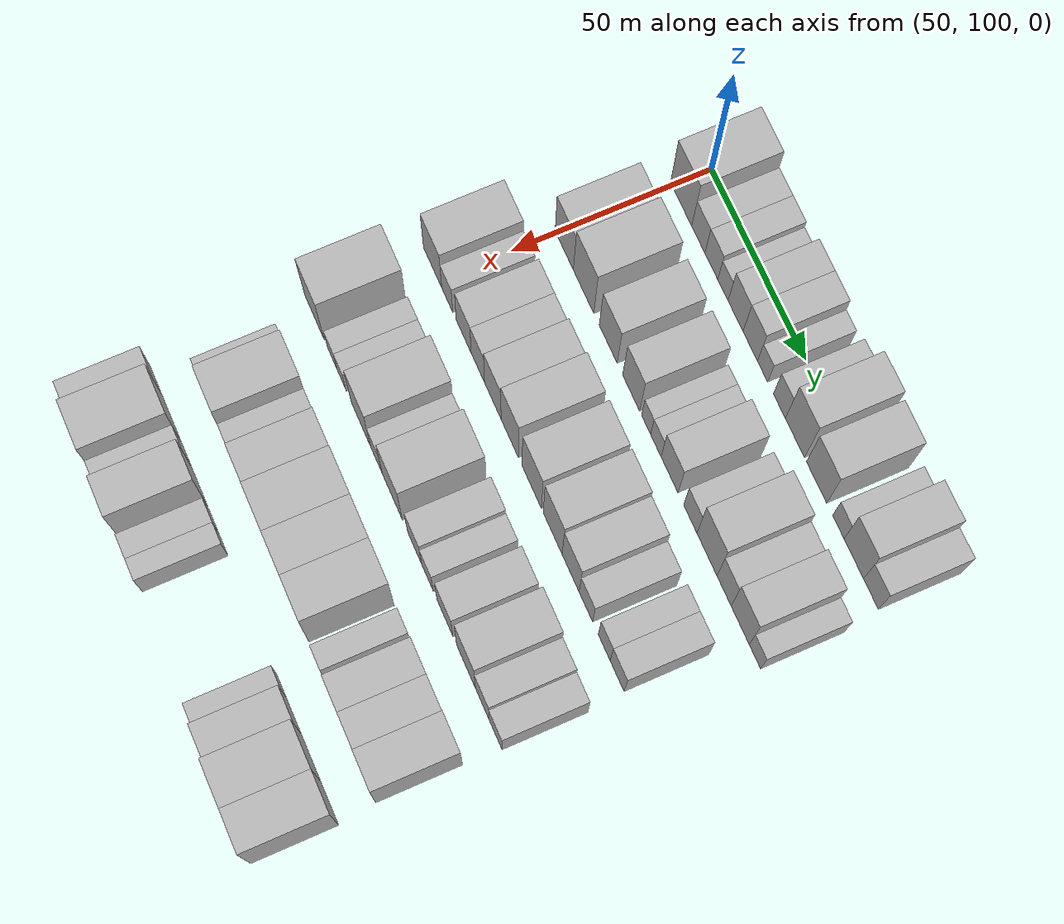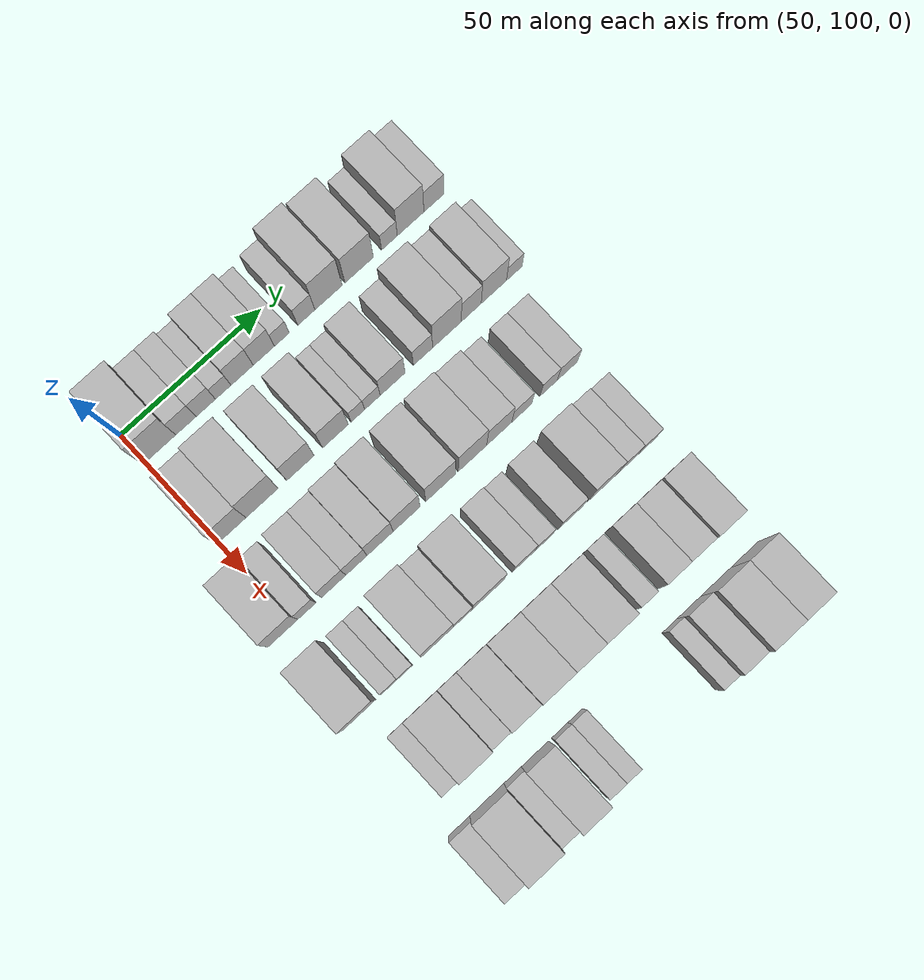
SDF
<sdf version="1.6">
 <world name="default">
  <model name="building_71">
   <static>1</static>
   <pose>50.0000 105.0422 0 0.000000 0.000000 0.000000</pose>
   <link name="link">
    <pose>0 0 12.00 0 0 0</pose>
    <collision name="collision"><geometry><box><size>20.0000 11.5213 24.0000</size></box></geometry></collision>
    <visual name="visual">
     <cast_shadows>0</cast_shadows>
     <geometry><box><size>20.0000 11.5213 24.0000</size></box></geometry>
     <material>
      <script>
       <uri>model://HANNAS_wall/materials/scripts</uri>
       <uri>model://HANNAS_wall/materials/textures</uri>
       <name>vrc/HANNAS_wall</name>
      </script>
     </material>
    </visual>
   </link>
  </model>
  <model name="building_72">
   <static>1</static>
   <pose>50.0000 114.3862 0 0.000000 0.000000 0.000000</pose>
   <link name="link">
    <pose>0 0 7.50 0 0 0</pose>
    <collision name="collision"><geometry><box><size>20.0000 7.1669 15.0000</size></box></geometry></collision>
    <visual name="visual">
     <cast_shadows>0</cast_shadows>
     <geometry><box><size>20.0000 7.1669 15.0000</size></box></geometry>
     <material>
      <script>
       <uri>model://HANNAS_wall/materials/scripts</uri>
       <uri>model://HANNAS_wall/materials/textures</uri>
       <name>vrc/HANNAS_wall</name>
      </script>
     </material>
    </visual>
   </link>
  </model>
  <model name="building_73">
   <static>1</static>
   <pose>50.0000 121.4127 0 0.000000 0.000000 0.000000</pose>
   <link name="link">
    <pose>0 0 7.50 0 0 0</pose>
    <collision name="collision"><geometry><box><size>20.0000 6.8861 15.0000</size></box></geometry></collision>
    <visual name="visual">
     <cast_shadows>0</cast_shadows>
     <geometry><box><size>20.0000 6.8861 15.0000</size></box></geometry>
     <material>
      <script>
       <uri>model://HANNAS_wall/materials/scripts</uri>
       <uri>model://HANNAS_wall/materials/textures</uri>
       <name>vrc/HANNAS_wall</name>
      </script>
     </material>
    </visual>
   </link>
  </model>
  <model name="building_74">
   <static>1</static>
   <pose>50.0000 127.6113 0 0.000000 0.000000 0.000000</pose>
   <link name="link">
    <pose>0 0 6.00 0 0 0</pose>
    <collision name="collision"><geometry><box><size>20.0000 5.5110 12.0000</size></box></geometry></collision>
    <visual name="visual">
     <cast_shadows>0</cast_shadows>
     <geometry><box><size>20.0000 5.5110 12.0000</size></box></geometry>
     <material>
      <script>
       <uri>model://HANNAS_wall/materials/scripts</uri>
       <uri>model://HANNAS_wall/materials/textures</uri>
       <name>vrc/HANNAS_wall</name>
      </script>
     </material>
    </visual>
   </link>
  </model>
  <model name="building_75">
   <static>1</static>
   <pose>50.0000 134.3503 0 0.000000 0.000000 0.000000</pose>
   <link name="link">
    <pose>0 0 9.00 0 0 0</pose>
    <collision name="collision"><geometry><box><size>20.0000 7.9670 18.0000</size></box></geometry></collision>
    <visual name="visual">
     <cast_shadows>0</cast_shadows>
     <geometry><box><size>20.0000 7.9670 18.0000</size></box></geometry>
     <material>
      <script>
       <uri>model://HANNAS_wall/materials/scripts</uri>
       <uri>model://HANNAS_wall/materials/textures</uri>
       <name>vrc/HANNAS_wall</name>
      </script>
     </material>
    </visual>
   </link>
  </model>
  <model name="building_76">
   <static>1</static>
   <pose>50.0000 142.1258 0 0.000000 0.000000 0.000000</pose>
   <link name="link">
    <pose>0 0 9.00 0 0 0</pose>
    <collision name="collision"><geometry><box><size>20.0000 7.5840 18.0000</size></box></geometry></collision>
    <visual name="visual">
     <cast_shadows>0</cast_shadows>
     <geometry><box><size>20.0000 7.5840 18.0000</size></box></geometry>
     <material>
      <script>
       <uri>model://HANNAS_wall/materials/scripts</uri>
       <uri>model://HANNAS_wall/materials/textures</uri>
       <name>vrc/HANNAS_wall</name>
      </script>
     </material>
    </visual>
   </link>
  </model>
  <model name="building_77">
   <static>1</static>
   <pose>50.0000 148.5942 0 0.000000 0.000000 0.000000</pose>
   <link name="link">
    <pose>0 0 6.00 0 0 0</pose>
    <collision name="collision"><geometry><box><size>20.0000 5.3529 12.0000</size></box></geometry></collision>
    <visual name="visual">
     <cast_shadows>0</cast_shadows>
     <geometry><box><size>20.0000 5.3529 12.0000</size></box></geometry>
     <material>
      <script>
       <uri>model://HANNAS_wall/materials/scripts</uri>
       <uri>model://HANNAS_wall/materials/textures</uri>
       <name>vrc/HANNAS_wall</name>
      </script>
     </material>
    </visual>
   </link>
  </model>
  <model name="building_78">
   <static>1</static>
   <pose>50.0000 157.3697 0 0.000000 0.000000 0.000000</pose>
   <link name="link">
    <pose>0 0 7.50 0 0 0</pose>
    <collision name="collision"><geometry><box><size>20.0000 6.1982 15.0000</size></box></geometry></collision>
    <visual name="visual">
     <cast_shadows>0</cast_shadows>
     <geometry><box><size>20.0000 6.1982 15.0000</size></box></geometry>
     <material>
      <script>
       <uri>model://HANNAS_wall/materials/scripts</uri>
       <uri>model://HANNAS_wall/materials/textures</uri>
       <name>vrc/HANNAS_wall</name>
      </script>
     </material>
    </visual>
   </link>
  </model>
  <model name="building_79">
   <static>1</static>
   <pose>50.0000 165.3997 0 0.000000 0.000000 0.000000</pose>
   <link name="link">
    <pose>0 0 12.00 0 0 0</pose>
    <collision name="collision"><geometry><box><size>20.0000 9.8618 24.0000</size></box></geometry></collision>
    <visual name="visual">
     <cast_shadows>0</cast_shadows>
     <geometry><box><size>20.0000 9.8618 24.0000</size></box></geometry>
     <material>
      <script>
       <uri>model://HANNAS_wall/materials/scripts</uri>
       <uri>model://HANNAS_wall/materials/textures</uri>
       <name>vrc/HANNAS_wall</name>
      </script>
     </material>
    </visual>
   </link>
  </model>
  <model name="building_80">
   <static>1</static>
   <pose>50.0000 176.4827 0 0.000000 0.000000 0.000000</pose>
   <link name="link">
    <pose>0 0 10.50 0 0 0</pose>
    <collision name="collision"><geometry><box><size>20.0000 10.3041 21.0000</size></box></geometry></collision>
    <visual name="visual">
     <cast_shadows>0</cast_shadows>
     <geometry><box><size>20.0000 10.3041 21.0000</size></box></geometry>
     <material>
      <script>
       <uri>model://HANNAS_wall/materials/scripts</uri>
       <uri>model://HANNAS_wall/materials/textures</uri>
       <name>vrc/HANNAS_wall</name>
      </script>
     </material>
    </visual>
   </link>
  </model>
  <model name="building_81">
   <static>1</static>
   <pose>50.0000 187.5096 0 0.000000 0.000000 0.000000</pose>
   <link name="link">
    <pose>0 0 6.00 0 0 0</pose>
    <collision name="collision"><geometry><box><size>20.0000 5.7497 12.0000</size></box></geometry></collision>
    <visual name="visual">
     <cast_shadows>0</cast_shadows>
     <geometry><box><size>20.0000 5.7497 12.0000</size></box></geometry>
     <material>
      <script>
       <uri>model://HANNAS_wall/materials/scripts</uri>
       <uri>model://HANNAS_wall/materials/textures</uri>
       <name>vrc/HANNAS_wall</name>
      </script>
     </material>
    </visual>
   </link>
  </model>
  <model name="building_82">
   <static>1</static>
   <pose>50.0000 195.2482 0 0.000000 0.000000 0.000000</pose>
   <link name="link">
    <pose>0 0 10.50 0 0 0</pose>
    <collision name="collision"><geometry><box><size>20.0000 9.7275 21.0000</size></box></geometry></collision>
    <visual name="visual">
     <cast_shadows>0</cast_shadows>
     <geometry><box><size>20.0000 9.7275 21.0000</size></box></geometry>
     <material>
      <script>
       <uri>model://HANNAS_wall/materials/scripts</uri>
       <uri>model://HANNAS_wall/materials/textures</uri>
       <name>vrc/HANNAS_wall</name>
      </script>
     </material>
    </visual>
   </link>
  </model>
  <model name="building_83">
   <static>1</static>
   <pose>50.0000 203.8060 0 0.000000 0.000000 0.000000</pose>
   <link name="link">
    <pose>0 0 7.50 0 0 0</pose>
    <collision name="collision"><geometry><box><size>20.0000 7.3881 15.0000</size></box></geometry></collision>
    <visual name="visual">
     <cast_shadows>0</cast_shadows>
     <geometry><box><size>20.0000 7.3881 15.0000</size></box></geometry>
     <material>
      <script>
       <uri>model://HANNAS_wall/materials/scripts</uri>
       <uri>model://HANNAS_wall/materials/textures</uri>
       <name>vrc/HANNAS_wall</name>
      </script>
     </material>
    </visual>
   </link>
  </model>
  <model name="building_189">
   <static>1</static>
   <pose>79.0000 104.6374 0 0.000000 0.000000 0.000000</pose>
   <link name="link">
    <pose>0 0 10.50 0 0 0</pose>
    <collision name="collision"><geometry><box><size>20.0000 10.1676 21.0000</size></box></geometry></collision>
    <visual name="visual">
     <cast_shadows>0</cast_shadows>
     <geometry><box><size>20.0000 10.1676 21.0000</size></box></geometry>
     <material>
      <script>
       <uri>model://HANNAS_wall/materials/scripts</uri>
       <uri>model://HANNAS_wall/materials/textures</uri>
       <name>vrc/HANNAS_wall</name>
      </script>
     </material>
    </visual>
   </link>
  </model>
  <model name="building_190">
   <static>1</static>
   <pose>79.0000 115.3976 0 0.000000 0.000000 0.000000</pose>
   <link name="link">
    <pose>0 0 12.00 0 0 0</pose>
    <collision name="collision"><geometry><box><size>20.0000 11.3528 24.0000</size></box></geometry></collision>
    <visual name="visual">
     <cast_shadows>0</cast_shadows>
     <geometry><box><size>20.0000 11.3528 24.0000</size></box></geometry>
     <material>
      <script>
       <uri>model://HANNAS_wall/materials/scripts</uri>
       <uri>model://HANNAS_wall/materials/textures</uri>
       <name>vrc/HANNAS_wall</name>
      </script>
     </material>
    </visual>
   </link>
  </model>
  <model name="building_191">
   <static>1</static>
   <pose>79.0000 128.9680 0 0.000000 0.000000 0.000000</pose>
   <link name="link">
    <pose>0 0 10.50 0 0 0</pose>
    <collision name="collision"><geometry><box><size>20.0000 9.7881 21.0000</size></box></geometry></collision>
    <visual name="visual">
     <cast_shadows>0</cast_shadows>
     <geometry><box><size>20.0000 9.7881 21.0000</size></box></geometry>
     <material>
      <script>
       <uri>model://HANNAS_wall/materials/scripts</uri>
       <uri>model://HANNAS_wall/materials/textures</uri>
       <name>vrc/HANNAS_wall</name>
      </script>
     </material>
    </visual>
   </link>
  </model>
  <model name="building_192">
   <static>1</static>
   <pose>79.0000 141.4562 0 0.000000 0.000000 0.000000</pose>
   <link name="link">
    <pose>0 0 10.50 0 0 0</pose>
    <collision name="collision"><geometry><box><size>20.0000 9.1883 21.0000</size></box></geometry></collision>
    <visual name="visual">
     <cast_shadows>0</cast_shadows>
     <geometry><box><size>20.0000 9.1883 21.0000</size></box></geometry>
     <material>
      <script>
       <uri>model://HANNAS_wall/materials/scripts</uri>
       <uri>model://HANNAS_wall/materials/textures</uri>
       <name>vrc/HANNAS_wall</name>
      </script>
     </material>
    </visual>
   </link>
  </model>
  <model name="building_193">
   <static>1</static>
   <pose>79.0000 149.4692 0 0.000000 0.000000 0.000000</pose>
   <link name="link">
    <pose>0 0 6.00 0 0 0</pose>
    <collision name="collision"><geometry><box><size>20.0000 4.8378 12.0000</size></box></geometry></collision>
    <visual name="visual">
     <cast_shadows>0</cast_shadows>
     <geometry><box><size>20.0000 4.8378 12.0000</size></box></geometry>
     <material>
      <script>
       <uri>model://HANNAS_wall/materials/scripts</uri>
       <uri>model://HANNAS_wall/materials/textures</uri>
       <name>vrc/HANNAS_wall</name>
      </script>
     </material>
    </visual>
   </link>
  </model>
  <model name="building_194">
   <static>1</static>
   <pose>79.0000 154.6959 0 0.000000 0.000000 0.000000</pose>
   <link name="link">
    <pose>0 0 6.00 0 0 0</pose>
    <collision name="collision"><geometry><box><size>20.0000 5.6156 12.0000</size></box></geometry></collision>
    <visual name="visual">
     <cast_shadows>0</cast_shadows>
     <geometry><box><size>20.0000 5.6156 12.0000</size></box></geometry>
     <material>
      <script>
       <uri>model://HANNAS_wall/materials/scripts</uri>
       <uri>model://HANNAS_wall/materials/textures</uri>
       <name>vrc/HANNAS_wall</name>
      </script>
     </material>
    </visual>
   </link>
  </model>
  <model name="building_195">
   <static>1</static>
   <pose>79.0000 161.9669 0 0.000000 0.000000 0.000000</pose>
   <link name="link">
    <pose>0 0 9.00 0 0 0</pose>
    <collision name="collision"><geometry><box><size>20.0000 8.9262 18.0000</size></box></geometry></collision>
    <visual name="visual">
     <cast_shadows>0</cast_shadows>
     <geometry><box><size>20.0000 8.9262 18.0000</size></box></geometry>
     <material>
      <script>
       <uri>model://HANNAS_wall/materials/scripts</uri>
       <uri>model://HANNAS_wall/materials/textures</uri>
       <name>vrc/HANNAS_wall</name>
      </script>
     </material>
    </visual>
   </link>
  </model>
  <model name="building_196">
   <static>1</static>
   <pose>79.0000 172.9092 0 0.000000 0.000000 0.000000</pose>
   <link name="link">
    <pose>0 0 7.50 0 0 0</pose>
    <collision name="collision"><geometry><box><size>20.0000 6.9585 15.0000</size></box></geometry></collision>
    <visual name="visual">
     <cast_shadows>0</cast_shadows>
     <geometry><box><size>20.0000 6.9585 15.0000</size></box></geometry>
     <material>
      <script>
       <uri>model://HANNAS_wall/materials/scripts</uri>
       <uri>model://HANNAS_wall/materials/textures</uri>
       <name>vrc/HANNAS_wall</name>
      </script>
     </material>
    </visual>
   </link>
  </model>
  <model name="building_197">
   <static>1</static>
   <pose>79.0000 181.5990 0 0.000000 0.000000 0.000000</pose>
   <link name="link">
    <pose>0 0 12.00 0 0 0</pose>
    <collision name="collision"><geometry><box><size>20.0000 10.4212 24.0000</size></box></geometry></collision>
    <visual name="visual">
     <cast_shadows>0</cast_shadows>
     <geometry><box><size>20.0000 10.4212 24.0000</size></box></geometry>
     <material>
      <script>
       <uri>model://HANNAS_wall/materials/scripts</uri>
       <uri>model://HANNAS_wall/materials/textures</uri>
       <name>vrc/HANNAS_wall</name>
      </script>
     </material>
    </visual>
   </link>
  </model>
  <model name="building_198">
   <static>1</static>
   <pose>79.0000 190.4482 0 0.000000 0.000000 0.000000</pose>
   <link name="link">
    <pose>0 0 9.00 0 0 0</pose>
    <collision name="collision"><geometry><box><size>20.0000 7.2770 18.0000</size></box></geometry></collision>
    <visual name="visual">
     <cast_shadows>0</cast_shadows>
     <geometry><box><size>20.0000 7.2770 18.0000</size></box></geometry>
     <material>
      <script>
       <uri>model://HANNAS_wall/materials/scripts</uri>
       <uri>model://HANNAS_wall/materials/textures</uri>
       <name>vrc/HANNAS_wall</name>
      </script>
     </material>
    </visual>
   </link>
  </model>
  <model name="building_199">
   <static>1</static>
   <pose>79.0000 198.7038 0 0.000000 0.000000 0.000000</pose>
   <link name="link">
    <pose>0 0 10.50 0 0 0</pose>
    <collision name="collision"><geometry><box><size>20.0000 9.2343 21.0000</size></box></geometry></collision>
    <visual name="visual">
     <cast_shadows>0</cast_shadows>
     <geometry><box><size>20.0000 9.2343 21.0000</size></box></geometry>
     <material>
      <script>
       <uri>model://HANNAS_wall/materials/scripts</uri>
       <uri>model://HANNAS_wall/materials/textures</uri>
       <name>vrc/HANNAS_wall</name>
      </script>
     </material>
    </visual>
   </link>
  </model>
  <model name="building_200">
   <static>1</static>
   <pose>79.0000 206.2001 0 0.000000 0.000000 0.000000</pose>
   <link name="link">
    <pose>0 0 6.00 0 0 0</pose>
    <collision name="collision"><geometry><box><size>20.0000 5.7583 12.0000</size></box></geometry></collision>
    <visual name="visual">
     <cast_shadows>0</cast_shadows>
     <geometry><box><size>20.0000 5.7583 12.0000</size></box></geometry>
     <material>
      <script>
       <uri>model://HANNAS_wall/materials/scripts</uri>
       <uri>model://HANNAS_wall/materials/textures</uri>
       <name>vrc/HANNAS_wall</name>
      </script>
     </material>
    </visual>
   </link>
  </model>
  <model name="building_304">
   <static>1</static>
   <pose>108.0000 96.5992 0 0.000000 0.000000 0.000000</pose>
   <link name="link">
    <pose>0 0 10.50 0 0 0</pose>
    <collision name="collision"><geometry><box><size>20.0000 10.4865 21.0000</size></box></geometry></collision>
    <visual name="visual">
     <cast_shadows>0</cast_shadows>
     <geometry><box><size>20.0000 10.4865 21.0000</size></box></geometry>
     <material>
      <script>
       <uri>model://HANNAS_wall/materials/scripts</uri>
       <uri>model://HANNAS_wall/materials/textures</uri>
       <name>vrc/HANNAS_wall</name>
      </script>
     </material>
    </visual>
   </link>
  </model>
  <model name="building_305">
   <static>1</static>
   <pose>108.0000 105.0092 0 0.000000 0.000000 0.000000</pose>
   <link name="link">
    <pose>0 0 7.50 0 0 0</pose>
    <collision name="collision"><geometry><box><size>20.0000 6.3336 15.0000</size></box></geometry></collision>
    <visual name="visual">
     <cast_shadows>0</cast_shadows>
     <geometry><box><size>20.0000 6.3336 15.0000</size></box></geometry>
     <material>
      <script>
       <uri>model://HANNAS_wall/materials/scripts</uri>
       <uri>model://HANNAS_wall/materials/textures</uri>
       <name>vrc/HANNAS_wall</name>
      </script>
     </material>
    </visual>
   </link>
  </model>
  <model name="building_306">
   <static>1</static>
   <pose>108.0000 114.4314 0 0.000000 0.000000 0.000000</pose>
   <link name="link">
    <pose>0 0 9.00 0 0 0</pose>
    <collision name="collision"><geometry><box><size>20.0000 8.5107 18.0000</size></box></geometry></collision>
    <visual name="visual">
     <cast_shadows>0</cast_shadows>
     <geometry><box><size>20.0000 8.5107 18.0000</size></box></geometry>
     <material>
      <script>
       <uri>model://HANNAS_wall/materials/scripts</uri>
       <uri>model://HANNAS_wall/materials/textures</uri>
       <name>vrc/HANNAS_wall</name>
      </script>
     </material>
    </visual>
   </link>
  </model>
  <model name="building_307">
   <static>1</static>
   <pose>108.0000 122.4295 0 0.000000 0.000000 0.000000</pose>
   <link name="link">
    <pose>0 0 9.00 0 0 0</pose>
    <collision name="collision"><geometry><box><size>20.0000 7.4855 18.0000</size></box></geometry></collision>
    <visual name="visual">
     <cast_shadows>0</cast_shadows>
     <geometry><box><size>20.0000 7.4855 18.0000</size></box></geometry>
     <material>
      <script>
       <uri>model://HANNAS_wall/materials/scripts</uri>
       <uri>model://HANNAS_wall/materials/textures</uri>
       <name>vrc/HANNAS_wall</name>
      </script>
     </material>
    </visual>
   </link>
  </model>
  <model name="building_308">
   <static>1</static>
   <pose>108.0000 130.8120 0 0.000000 0.000000 0.000000</pose>
   <link name="link">
    <pose>0 0 10.50 0 0 0</pose>
    <collision name="collision"><geometry><box><size>20.0000 9.2796 21.0000</size></box></geometry></collision>
    <visual name="visual">
     <cast_shadows>0</cast_shadows>
     <geometry><box><size>20.0000 9.2796 21.0000</size></box></geometry>
     <material>
      <script>
       <uri>model://HANNAS_wall/materials/scripts</uri>
       <uri>model://HANNAS_wall/materials/textures</uri>
       <name>vrc/HANNAS_wall</name>
      </script>
     </material>
    </visual>
   </link>
  </model>
  <model name="building_309">
   <static>1</static>
   <pose>108.0000 140.2572 0 0.000000 0.000000 0.000000</pose>
   <link name="link">
    <pose>0 0 12.00 0 0 0</pose>
    <collision name="collision"><geometry><box><size>20.0000 9.6108 24.0000</size></box></geometry></collision>
    <visual name="visual">
     <cast_shadows>0</cast_shadows>
     <geometry><box><size>20.0000 9.6108 24.0000</size></box></geometry>
     <material>
      <script>
       <uri>model://HANNAS_wall/materials/scripts</uri>
       <uri>model://HANNAS_wall/materials/textures</uri>
       <name>vrc/HANNAS_wall</name>
      </script>
     </material>
    </visual>
   </link>
  </model>
  <model name="building_310">
   <static>1</static>
   <pose>108.0000 152.3832 0 0.000000 0.000000 0.000000</pose>
   <link name="link">
    <pose>0 0 12.00 0 0 0</pose>
    <collision name="collision"><geometry><box><size>20.0000 10.6410 24.0000</size></box></geometry></collision>
    <visual name="visual">
     <cast_shadows>0</cast_shadows>
     <geometry><box><size>20.0000 10.6410 24.0000</size></box></geometry>
     <material>
      <script>
       <uri>model://HANNAS_wall/materials/scripts</uri>
       <uri>model://HANNAS_wall/materials/textures</uri>
       <name>vrc/HANNAS_wall</name>
      </script>
     </material>
    </visual>
   </link>
  </model>
  <model name="building_311">
   <static>1</static>
   <pose>108.0000 163.8141 0 0.000000 0.000000 0.000000</pose>
   <link name="link">
    <pose>0 0 12.00 0 0 0</pose>
    <collision name="collision"><geometry><box><size>20.0000 10.2208 24.0000</size></box></geometry></collision>
    <visual name="visual">
     <cast_shadows>0</cast_shadows>
     <geometry><box><size>20.0000 10.2208 24.0000</size></box></geometry>
     <material>
      <script>
       <uri>model://HANNAS_wall/materials/scripts</uri>
       <uri>model://HANNAS_wall/materials/textures</uri>
       <name>vrc/HANNAS_wall</name>
      </script>
     </material>
    </visual>
   </link>
  </model>
  <model name="building_312">
   <static>1</static>
   <pose>108.0000 173.4980 0 0.000000 0.000000 0.000000</pose>
   <link name="link">
    <pose>0 0 10.50 0 0 0</pose>
    <collision name="collision"><geometry><box><size>20.0000 9.1470 21.0000</size></box></geometry></collision>
    <visual name="visual">
     <cast_shadows>0</cast_shadows>
     <geometry><box><size>20.0000 9.1470 21.0000</size></box></geometry>
     <material>
      <script>
       <uri>model://HANNAS_wall/materials/scripts</uri>
       <uri>model://HANNAS_wall/materials/textures</uri>
       <name>vrc/HANNAS_wall</name>
      </script>
     </material>
    </visual>
   </link>
  </model>
  <model name="building_313">
   <static>1</static>
   <pose>108.0000 181.6692 0 0.000000 0.000000 0.000000</pose>
   <link name="link">
    <pose>0 0 7.50 0 0 0</pose>
    <collision name="collision"><geometry><box><size>20.0000 7.1953 15.0000</size></box></geometry></collision>
    <visual name="visual">
     <cast_shadows>0</cast_shadows>
     <geometry><box><size>20.0000 7.1953 15.0000</size></box></geometry>
     <material>
      <script>
       <uri>model://HANNAS_wall/materials/scripts</uri>
       <uri>model://HANNAS_wall/materials/textures</uri>
       <name>vrc/HANNAS_wall</name>
      </script>
     </material>
    </visual>
   </link>
  </model>
  <model name="building_314">
   <static>1</static>
   <pose>108.0000 191.3875 0 0.000000 0.000000 0.000000</pose>
   <link name="link">
    <pose>0 0 7.50 0 0 0</pose>
    <collision name="collision"><geometry><box><size>20.0000 6.2413 15.0000</size></box></geometry></collision>
    <visual name="visual">
     <cast_shadows>0</cast_shadows>
     <geometry><box><size>20.0000 6.2413 15.0000</size></box></geometry>
     <material>
      <script>
       <uri>model://HANNAS_wall/materials/scripts</uri>
       <uri>model://HANNAS_wall/materials/textures</uri>
       <name>vrc/HANNAS_wall</name>
      </script>
     </material>
    </visual>
   </link>
  </model>
  <model name="building_315">
   <static>1</static>
   <pose>108.0000 198.1642 0 0.000000 0.000000 0.000000</pose>
   <link name="link">
    <pose>0 0 7.50 0 0 0</pose>
    <collision name="collision"><geometry><box><size>20.0000 7.3122 15.0000</size></box></geometry></collision>
    <visual name="visual">
     <cast_shadows>0</cast_shadows>
     <geometry><box><size>20.0000 7.3122 15.0000</size></box></geometry>
     <material>
      <script>
       <uri>model://HANNAS_wall/materials/scripts</uri>
       <uri>model://HANNAS_wall/materials/textures</uri>
       <name>vrc/HANNAS_wall</name>
      </script>
     </material>
    </visual>
   </link>
  </model>
  <model name="building_420">
   <static>1</static>
   <pose>137.0000 96.9860 0 0.000000 0.000000 0.000000</pose>
   <link name="link">
    <pose>0 0 12.00 0 0 0</pose>
    <collision name="collision"><geometry><box><size>20.0000 11.4616 24.0000</size></box></geometry></collision>
    <visual name="visual">
     <cast_shadows>0</cast_shadows>
     <geometry><box><size>20.0000 11.4616 24.0000</size></box></geometry>
     <material>
      <script>
       <uri>model://HANNAS_wall/materials/scripts</uri>
       <uri>model://HANNAS_wall/materials/textures</uri>
       <name>vrc/HANNAS_wall</name>
      </script>
     </material>
    </visual>
   </link>
  </model>
  <model name="building_421">
   <static>1</static>
   <pose>137.0000 107.5729 0 0.000000 0.000000 0.000000</pose>
   <link name="link">
    <pose>0 0 6.00 0 0 0</pose>
    <collision name="collision"><geometry><box><size>20.0000 5.7123 12.0000</size></box></geometry></collision>
    <visual name="visual">
     <cast_shadows>0</cast_shadows>
     <geometry><box><size>20.0000 5.7123 12.0000</size></box></geometry>
     <material>
      <script>
       <uri>model://HANNAS_wall/materials/scripts</uri>
       <uri>model://HANNAS_wall/materials/textures</uri>
       <name>vrc/HANNAS_wall</name>
      </script>
     </material>
    </visual>
   </link>
  </model>
  <model name="building_422">
   <static>1</static>
   <pose>137.0000 113.0613 0 0.000000 0.000000 0.000000</pose>
   <link name="link">
    <pose>0 0 6.00 0 0 0</pose>
    <collision name="collision"><geometry><box><size>20.0000 5.2644 12.0000</size></box></geometry></collision>
    <visual name="visual">
     <cast_shadows>0</cast_shadows>
     <geometry><box><size>20.0000 5.2644 12.0000</size></box></geometry>
     <material>
      <script>
       <uri>model://HANNAS_wall/materials/scripts</uri>
       <uri>model://HANNAS_wall/materials/textures</uri>
       <name>vrc/HANNAS_wall</name>
      </script>
     </material>
    </visual>
   </link>
  </model>
  <model name="building_423">
   <static>1</static>
   <pose>137.0000 124.2670 0 0.000000 0.000000 0.000000</pose>
   <link name="link">
    <pose>0 0 12.00 0 0 0</pose>
    <collision name="collision"><geometry><box><size>20.0000 11.1469 24.0000</size></box></geometry></collision>
    <visual name="visual">
     <cast_shadows>0</cast_shadows>
     <geometry><box><size>20.0000 11.1469 24.0000</size></box></geometry>
     <material>
      <script>
       <uri>model://HANNAS_wall/materials/scripts</uri>
       <uri>model://HANNAS_wall/materials/textures</uri>
       <name>vrc/HANNAS_wall</name>
      </script>
     </material>
    </visual>
   </link>
  </model>
  <model name="building_424">
   <static>1</static>
   <pose>137.0000 133.1714 0 0.000000 0.000000 0.000000</pose>
   <link name="link">
    <pose>0 0 7.50 0 0 0</pose>
    <collision name="collision"><geometry><box><size>20.0000 6.6620 15.0000</size></box></geometry></collision>
    <visual name="visual">
     <cast_shadows>0</cast_shadows>
     <geometry><box><size>20.0000 6.6620 15.0000</size></box></geometry>
     <material>
      <script>
       <uri>model://HANNAS_wall/materials/scripts</uri>
       <uri>model://HANNAS_wall/materials/textures</uri>
       <name>vrc/HANNAS_wall</name>
      </script>
     </material>
    </visual>
   </link>
  </model>
  <model name="building_425">
   <static>1</static>
   <pose>137.0000 142.2371 0 0.000000 0.000000 0.000000</pose>
   <link name="link">
    <pose>0 0 12.00 0 0 0</pose>
    <collision name="collision"><geometry><box><size>20.0000 11.4694 24.0000</size></box></geometry></collision>
    <visual name="visual">
     <cast_shadows>0</cast_shadows>
     <geometry><box><size>20.0000 11.4694 24.0000</size></box></geometry>
     <material>
      <script>
       <uri>model://HANNAS_wall/materials/scripts</uri>
       <uri>model://HANNAS_wall/materials/textures</uri>
       <name>vrc/HANNAS_wall</name>
      </script>
     </material>
    </visual>
   </link>
  </model>
  <model name="building_426">
   <static>1</static>
   <pose>137.0000 154.9363 0 0.000000 0.000000 0.000000</pose>
   <link name="link">
    <pose>0 0 9.00 0 0 0</pose>
    <collision name="collision"><geometry><box><size>20.0000 7.9289 18.0000</size></box></geometry></collision>
    <visual name="visual">
     <cast_shadows>0</cast_shadows>
     <geometry><box><size>20.0000 7.9289 18.0000</size></box></geometry>
     <material>
      <script>
       <uri>model://HANNAS_wall/materials/scripts</uri>
       <uri>model://HANNAS_wall/materials/textures</uri>
       <name>vrc/HANNAS_wall</name>
      </script>
     </material>
    </visual>
   </link>
  </model>
  <model name="building_427">
   <static>1</static>
   <pose>137.0000 162.1139 0 0.000000 0.000000 0.000000</pose>
   <link name="link">
    <pose>0 0 7.50 0 0 0</pose>
    <collision name="collision"><geometry><box><size>20.0000 6.4263 15.0000</size></box></geometry></collision>
    <visual name="visual">
     <cast_shadows>0</cast_shadows>
     <geometry><box><size>20.0000 6.4263 15.0000</size></box></geometry>
     <material>
      <script>
       <uri>model://HANNAS_wall/materials/scripts</uri>
       <uri>model://HANNAS_wall/materials/textures</uri>
       <name>vrc/HANNAS_wall</name>
      </script>
     </material>
    </visual>
   </link>
  </model>
  <model name="building_428">
   <static>1</static>
   <pose>137.0000 171.7398 0 0.000000 0.000000 0.000000</pose>
   <link name="link">
    <pose>0 0 9.00 0 0 0</pose>
    <collision name="collision"><geometry><box><size>20.0000 8.8256 18.0000</size></box></geometry></collision>
    <visual name="visual">
     <cast_shadows>0</cast_shadows>
     <geometry><box><size>20.0000 8.8256 18.0000</size></box></geometry>
     <material>
      <script>
       <uri>model://HANNAS_wall/materials/scripts</uri>
       <uri>model://HANNAS_wall/materials/textures</uri>
       <name>vrc/HANNAS_wall</name>
      </script>
     </material>
    </visual>
   </link>
  </model>
  <model name="building_429">
   <static>1</static>
   <pose>137.0000 183.3273 0 0.000000 0.000000 0.000000</pose>
   <link name="link">
    <pose>0 0 12.00 0 0 0</pose>
    <collision name="collision"><geometry><box><size>20.0000 10.3495 24.0000</size></box></geometry></collision>
    <visual name="visual">
     <cast_shadows>0</cast_shadows>
     <geometry><box><size>20.0000 10.3495 24.0000</size></box></geometry>
     <material>
      <script>
       <uri>model://HANNAS_wall/materials/scripts</uri>
       <uri>model://HANNAS_wall/materials/textures</uri>
       <name>vrc/HANNAS_wall</name>
      </script>
     </material>
    </visual>
   </link>
  </model>
  <model name="building_430">
   <static>1</static>
   <pose>137.0000 192.2077 0 0.000000 0.000000 0.000000</pose>
   <link name="link">
    <pose>0 0 9.00 0 0 0</pose>
    <collision name="collision"><geometry><box><size>20.0000 7.4113 18.0000</size></box></geometry></collision>
    <visual name="visual">
     <cast_shadows>0</cast_shadows>
     <geometry><box><size>20.0000 7.4113 18.0000</size></box></geometry>
     <material>
      <script>
       <uri>model://HANNAS_wall/materials/scripts</uri>
       <uri>model://HANNAS_wall/materials/textures</uri>
       <name>vrc/HANNAS_wall</name>
      </script>
     </material>
    </visual>
   </link>
  </model>
  <model name="building_431">
   <static>1</static>
   <pose>137.0000 199.3708 0 0.000000 0.000000 0.000000</pose>
   <link name="link">
    <pose>0 0 7.50 0 0 0</pose>
    <collision name="collision"><geometry><box><size>20.0000 6.9150 15.0000</size></box></geometry></collision>
    <visual name="visual">
     <cast_shadows>0</cast_shadows>
     <geometry><box><size>20.0000 6.9150 15.0000</size></box></geometry>
     <material>
      <script>
       <uri>model://HANNAS_wall/materials/scripts</uri>
       <uri>model://HANNAS_wall/materials/textures</uri>
       <name>vrc/HANNAS_wall</name>
      </script>
     </material>
    </visual>
   </link>
  </model>
  <model name="building_531">
   <static>1</static>
   <pose>166.0000 101.8438 0 0.000000 0.000000 0.000000</pose>
   <link name="link">
    <pose>0 0 6.00 0 0 0</pose>
    <collision name="collision"><geometry><box><size>20.0000 5.8209 12.0000</size></box></geometry></collision>
    <visual name="visual">
     <cast_shadows>0</cast_shadows>
     <geometry><box><size>20.0000 5.8209 12.0000</size></box></geometry>
     <material>
      <script>
       <uri>model://HANNAS_wall/materials/scripts</uri>
       <uri>model://HANNAS_wall/materials/textures</uri>
       <name>vrc/HANNAS_wall</name>
      </script>
     </material>
    </visual>
   </link>
  </model>
  <model name="building_532">
   <static>1</static>
   <pose>166.0000 110.3839 0 0.000000 0.000000 0.000000</pose>
   <link name="link">
    <pose>0 0 12.00 0 0 0</pose>
    <collision name="collision"><geometry><box><size>20.0000 11.2594 24.0000</size></box></geometry></collision>
    <visual name="visual">
     <cast_shadows>0</cast_shadows>
     <geometry><box><size>20.0000 11.2594 24.0000</size></box></geometry>
     <material>
      <script>
       <uri>model://HANNAS_wall/materials/scripts</uri>
       <uri>model://HANNAS_wall/materials/textures</uri>
       <name>vrc/HANNAS_wall</name>
      </script>
     </material>
    </visual>
   </link>
  </model>
  <model name="building_533">
   <static>1</static>
   <pose>166.0000 119.2672 0 0.000000 0.000000 0.000000</pose>
   <link name="link">
    <pose>0 0 7.50 0 0 0</pose>
    <collision name="collision"><geometry><box><size>20.0000 6.5071 15.0000</size></box></geometry></collision>
    <visual name="visual">
     <cast_shadows>0</cast_shadows>
     <geometry><box><size>20.0000 6.5071 15.0000</size></box></geometry>
     <material>
      <script>
       <uri>model://HANNAS_wall/materials/scripts</uri>
       <uri>model://HANNAS_wall/materials/textures</uri>
       <name>vrc/HANNAS_wall</name>
      </script>
     </material>
    </visual>
   </link>
  </model>
  <model name="building_534">
   <static>1</static>
   <pose>166.0000 127.5234 0 0.000000 0.000000 0.000000</pose>
   <link name="link">
    <pose>0 0 10.50 0 0 0</pose>
    <collision name="collision"><geometry><box><size>20.0000 10.0052 21.0000</size></box></geometry></collision>
    <visual name="visual">
     <cast_shadows>0</cast_shadows>
     <geometry><box><size>20.0000 10.0052 21.0000</size></box></geometry>
     <material>
      <script>
       <uri>model://HANNAS_wall/materials/scripts</uri>
       <uri>model://HANNAS_wall/materials/textures</uri>
       <name>vrc/HANNAS_wall</name>
      </script>
     </material>
    </visual>
   </link>
  </model>
  <model name="building_535">
   <static>1</static>
   <pose>166.0000 138.2394 0 0.000000 0.000000 0.000000</pose>
   <link name="link">
    <pose>0 0 12.00 0 0 0</pose>
    <collision name="collision"><geometry><box><size>20.0000 11.4267 24.0000</size></box></geometry></collision>
    <visual name="visual">
     <cast_shadows>0</cast_shadows>
     <geometry><box><size>20.0000 11.4267 24.0000</size></box></geometry>
     <material>
      <script>
       <uri>model://HANNAS_wall/materials/scripts</uri>
       <uri>model://HANNAS_wall/materials/textures</uri>
       <name>vrc/HANNAS_wall</name>
      </script>
     </material>
    </visual>
   </link>
  </model>
  <model name="building_536">
   <static>1</static>
   <pose>166.0000 149.0404 0 0.000000 0.000000 0.000000</pose>
   <link name="link">
    <pose>0 0 12.00 0 0 0</pose>
    <collision name="collision"><geometry><box><size>20.0000 10.1753 24.0000</size></box></geometry></collision>
    <visual name="visual">
     <cast_shadows>0</cast_shadows>
     <geometry><box><size>20.0000 10.1753 24.0000</size></box></geometry>
     <material>
      <script>
       <uri>model://HANNAS_wall/materials/scripts</uri>
       <uri>model://HANNAS_wall/materials/textures</uri>
       <name>vrc/HANNAS_wall</name>
      </script>
     </material>
    </visual>
   </link>
  </model>
  <model name="building_537">
   <static>1</static>
   <pose>166.0000 159.4746 0 0.000000 0.000000 0.000000</pose>
   <link name="link">
    <pose>0 0 12.00 0 0 0</pose>
    <collision name="collision"><geometry><box><size>20.0000 10.6931 24.0000</size></box></geometry></collision>
    <visual name="visual">
     <cast_shadows>0</cast_shadows>
     <geometry><box><size>20.0000 10.6931 24.0000</size></box></geometry>
     <material>
      <script>
       <uri>model://HANNAS_wall/materials/scripts</uri>
       <uri>model://HANNAS_wall/materials/textures</uri>
       <name>vrc/HANNAS_wall</name>
      </script>
     </material>
    </visual>
   </link>
  </model>
  <model name="building_538">
   <static>1</static>
   <pose>166.0000 170.7902 0 0.000000 0.000000 0.000000</pose>
   <link name="link">
    <pose>0 0 6.00 0 0 0</pose>
    <collision name="collision"><geometry><box><size>20.0000 5.9380 12.0000</size></box></geometry></collision>
    <visual name="visual">
     <cast_shadows>0</cast_shadows>
     <geometry><box><size>20.0000 5.9380 12.0000</size></box></geometry>
     <material>
      <script>
       <uri>model://HANNAS_wall/materials/scripts</uri>
       <uri>model://HANNAS_wall/materials/textures</uri>
       <name>vrc/HANNAS_wall</name>
      </script>
     </material>
    </visual>
   </link>
  </model>
  <model name="building_539">
   <static>1</static>
   <pose>166.0000 179.9866 0 0.000000 0.000000 0.000000</pose>
   <link name="link">
    <pose>0 0 9.00 0 0 0</pose>
    <collision name="collision"><geometry><box><size>20.0000 8.4547 18.0000</size></box></geometry></collision>
    <visual name="visual">
     <cast_shadows>0</cast_shadows>
     <geometry><box><size>20.0000 8.4547 18.0000</size></box></geometry>
     <material>
      <script>
       <uri>model://HANNAS_wall/materials/scripts</uri>
       <uri>model://HANNAS_wall/materials/textures</uri>
       <name>vrc/HANNAS_wall</name>
      </script>
     </material>
    </visual>
   </link>
  </model>
  <model name="building_540">
   <static>1</static>
   <pose>166.0000 188.5811 0 0.000000 0.000000 0.000000</pose>
   <link name="link">
    <pose>0 0 9.00 0 0 0</pose>
    <collision name="collision"><geometry><box><size>20.0000 8.7344 18.0000</size></box></geometry></collision>
    <visual name="visual">
     <cast_shadows>0</cast_shadows>
     <geometry><box><size>20.0000 8.7344 18.0000</size></box></geometry>
     <material>
      <script>
       <uri>model://HANNAS_wall/materials/scripts</uri>
       <uri>model://HANNAS_wall/materials/textures</uri>
       <name>vrc/HANNAS_wall</name>
      </script>
     </material>
    </visual>
   </link>
  </model>
  <model name="building_541">
   <static>1</static>
   <pose>166.0000 197.6931 0 0.000000 0.000000 0.000000</pose>
   <link name="link">
    <pose>0 0 10.50 0 0 0</pose>
    <collision name="collision"><geometry><box><size>20.0000 9.4895 21.0000</size></box></geometry></collision>
    <visual name="visual">
     <cast_shadows>0</cast_shadows>
     <geometry><box><size>20.0000 9.4895 21.0000</size></box></geometry>
     <material>
      <script>
       <uri>model://HANNAS_wall/materials/scripts</uri>
       <uri>model://HANNAS_wall/materials/textures</uri>
       <name>vrc/HANNAS_wall</name>
      </script>
     </material>
    </visual>
   </link>
  </model>
  <model name="building_649">
   <static>1</static>
   <pose>195.0000 96.6877 0 0.000000 0.000000 0.000000</pose>
   <link name="link">
    <pose>0 0 7.50 0 0 0</pose>
    <collision name="collision"><geometry><box><size>20.0000 7.3876 15.0000</size></box></geometry></collision>
    <visual name="visual">
     <cast_shadows>0</cast_shadows>
     <geometry><box><size>20.0000 7.3876 15.0000</size></box></geometry>
     <material>
      <script>
       <uri>model://HANNAS_wall/materials/scripts</uri>
       <uri>model://HANNAS_wall/materials/textures</uri>
       <name>vrc/HANNAS_wall</name>
      </script>
     </material>
    </visual>
   </link>
  </model>
  <model name="building_650">
   <static>1</static>
   <pose>195.0000 106.3514 0 0.000000 0.000000 0.000000</pose>
   <link name="link">
    <pose>0 0 12.00 0 0 0</pose>
    <collision name="collision"><geometry><box><size>20.0000 11.9398 24.0000</size></box></geometry></collision>
    <visual name="visual">
     <cast_shadows>0</cast_shadows>
     <geometry><box><size>20.0000 11.9398 24.0000</size></box></geometry>
     <material>
      <script>
       <uri>model://HANNAS_wall/materials/scripts</uri>
       <uri>model://HANNAS_wall/materials/textures</uri>
       <name>vrc/HANNAS_wall</name>
      </script>
     </material>
    </visual>
   </link>
  </model>
  <model name="building_651">
   <static>1</static>
   <pose>195.0000 115.3884 0 0.000000 0.000000 0.000000</pose>
   <link name="link">
    <pose>0 0 7.50 0 0 0</pose>
    <collision name="collision"><geometry><box><size>20.0000 6.1342 15.0000</size></box></geometry></collision>
    <visual name="visual">
     <cast_shadows>0</cast_shadows>
     <geometry><box><size>20.0000 6.1342 15.0000</size></box></geometry>
     <material>
      <script>
       <uri>model://HANNAS_wall/materials/scripts</uri>
       <uri>model://HANNAS_wall/materials/textures</uri>
       <name>vrc/HANNAS_wall</name>
      </script>
     </material>
    </visual>
   </link>
  </model>
  <model name="building_652">
   <static>1</static>
   <pose>195.0000 123.2724 0 0.000000 0.000000 0.000000</pose>
   <link name="link">
    <pose>0 0 12.00 0 0 0</pose>
    <collision name="collision"><geometry><box><size>20.0000 9.6338 24.0000</size></box></geometry></collision>
    <visual name="visual">
     <cast_shadows>0</cast_shadows>
     <geometry><box><size>20.0000 9.6338 24.0000</size></box></geometry>
     <material>
      <script>
       <uri>model://HANNAS_wall/materials/scripts</uri>
       <uri>model://HANNAS_wall/materials/textures</uri>
       <name>vrc/HANNAS_wall</name>
      </script>
     </material>
    </visual>
   </link>
  </model>
  <model name="building_653">
   <static>1</static>
   <pose>195.0000 132.0228 0 0.000000 0.000000 0.000000</pose>
   <link name="link">
    <pose>0 0 6.00 0 0 0</pose>
    <collision name="collision"><geometry><box><size>20.0000 5.8671 12.0000</size></box></geometry></collision>
    <visual name="visual">
     <cast_shadows>0</cast_shadows>
     <geometry><box><size>20.0000 5.8671 12.0000</size></box></geometry>
     <material>
      <script>
       <uri>model://HANNAS_wall/materials/scripts</uri>
       <uri>model://HANNAS_wall/materials/textures</uri>
       <name>vrc/HANNAS_wall</name>
      </script>
     </material>
    </visual>
   </link>
  </model>
  <model name="building_654">
   <static>1</static>
   <pose>195.0000 137.5464 0 0.000000 0.000000 0.000000</pose>
   <link name="link">
    <pose>0 0 6.00 0 0 0</pose>
    <collision name="collision"><geometry><box><size>20.0000 5.1802 12.0000</size></box></geometry></collision>
    <visual name="visual">
     <cast_shadows>0</cast_shadows>
     <geometry><box><size>20.0000 5.1802 12.0000</size></box></geometry>
     <material>
      <script>
       <uri>model://HANNAS_wall/materials/scripts</uri>
       <uri>model://HANNAS_wall/materials/textures</uri>
       <name>vrc/HANNAS_wall</name>
      </script>
     </material>
    </visual>
   </link>
  </model>
  <model name="building_655">
   <static>1</static>
   <pose>195.0000 171.3742 0 0.000000 0.000000 0.000000</pose>
   <link name="link">
    <pose>0 0 6.00 0 0 0</pose>
    <collision name="collision"><geometry><box><size>20.0000 5.4918 12.0000</size></box></geometry></collision>
    <visual name="visual">
     <cast_shadows>0</cast_shadows>
     <geometry><box><size>20.0000 5.4918 12.0000</size></box></geometry>
     <material>
      <script>
       <uri>model://HANNAS_wall/materials/scripts</uri>
       <uri>model://HANNAS_wall/materials/textures</uri>
       <name>vrc/HANNAS_wall</name>
      </script>
     </material>
    </visual>
   </link>
  </model>
  <model name="building_656">
   <static>1</static>
   <pose>195.0000 178.3989 0 0.000000 0.000000 0.000000</pose>
   <link name="link">
    <pose>0 0 9.00 0 0 0</pose>
    <collision name="collision"><geometry><box><size>20.0000 8.5575 18.0000</size></box></geometry></collision>
    <visual name="visual">
     <cast_shadows>0</cast_shadows>
     <geometry><box><size>20.0000 8.5575 18.0000</size></box></geometry>
     <material>
      <script>
       <uri>model://HANNAS_wall/materials/scripts</uri>
       <uri>model://HANNAS_wall/materials/textures</uri>
       <name>vrc/HANNAS_wall</name>
      </script>
     </material>
    </visual>
   </link>
  </model>
  <model name="building_657">
   <static>1</static>
   <pose>195.0000 188.1703 0 0.000000 0.000000 0.000000</pose>
   <link name="link">
    <pose>0 0 12.00 0 0 0</pose>
    <collision name="collision"><geometry><box><size>20.0000 10.9853 24.0000</size></box></geometry></collision>
    <visual name="visual">
     <cast_shadows>0</cast_shadows>
     <geometry><box><size>20.0000 10.9853 24.0000</size></box></geometry>
     <material>
      <script>
       <uri>model://HANNAS_wall/materials/scripts</uri>
       <uri>model://HANNAS_wall/materials/textures</uri>
       <name>vrc/HANNAS_wall</name>
      </script>
     </material>
    </visual>
   </link>
  </model>
  <model name="building_658">
   <static>1</static>
   <pose>195.0000 198.6644 0 0.000000 0.000000 0.000000</pose>
   <link name="link">
    <pose>0 0 12.00 0 0 0</pose>
    <collision name="collision"><geometry><box><size>20.0000 10.0029 24.0000</size></box></geometry></collision>
    <visual name="visual">
     <cast_shadows>0</cast_shadows>
     <geometry><box><size>20.0000 10.0029 24.0000</size></box></geometry>
     <material>
      <script>
       <uri>model://HANNAS_wall/materials/scripts</uri>
       <uri>model://HANNAS_wall/materials/textures</uri>
       <name>vrc/HANNAS_wall</name>
      </script>
     </material>
    </visual>
   </link>
  </model>
 </world>
</sdf>
